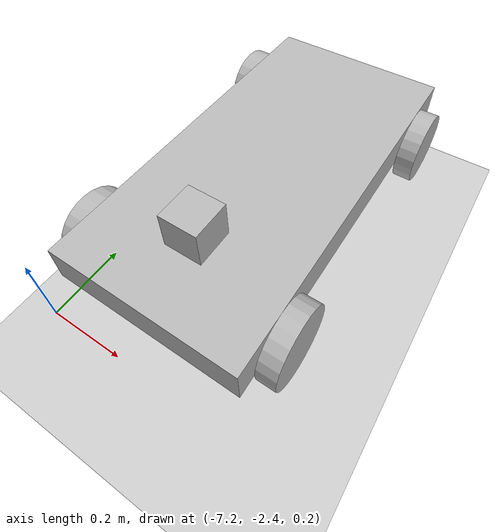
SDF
<sdf version="1.6">
 <world name="default">
  <light name="sun" type="directional">
   <pose>0 0 10 0 -0 0</pose>
   <diffuse>0.8 0.8 0.8 1</diffuse>
   <specular>0.2 0.2 0.2 1</specular>
   <attenuation>
    <range>1000</range>
    <constant>0.9</constant>
    <linear>0.01</linear>
    <quadratic>0.001</quadratic>
   </attenuation>
   <direction>-0.5 0.1 -0.9</direction>
  </light>
  <model name="ground_plane">
   <static>1</static>
   <link name="link">
    <collision name="collision">
     <geometry><plane><normal>0 0 1</normal><size>100 100</size></plane></geometry>
     <surface><friction><ode><mu>100</mu><mu2>50</mu2></ode></friction></surface>
    </collision>
    <visual name="visual">
     <cast_shadows>0</cast_shadows>
     <geometry><plane><normal>0 0 1</normal><size>100 100</size></plane></geometry>
     <material>
      <script><uri>file://media/materials/scripts/gazebo.material</uri><name>Gazebo/Grey</name></script>
     </material>
    </visual>
   </link>
  </model>
  <gravity>0 0 -9.8</gravity>
  <magnetic_field>6e-06 2.3e-05 -4.2e-05</magnetic_field>
  <atmosphere type="adiabatic"/>
  <physics name="default_physics" default="0" type="ode">
   <max_step_size>0.001</max_step_size>
   <real_time_factor>1</real_time_factor>
   <real_time_update_rate>1000</real_time_update_rate>
  </physics>
  <scene><ambient>0.4 0.4 0.4 1</ambient><background>0.7 0.7 0.7 1</background><shadows>1</shadows></scene>
  <audio><device>default</device></audio>
  <spherical_coordinates>
   <surface_model>EARTH_WGS84</surface_model>
   <latitude_deg>0</latitude_deg>
   <longitude_deg>0</longitude_deg>
   <elevation>0</elevation>
   <heading_deg>0</heading_deg>
  </spherical_coordinates>
  <model name="macroed">
   <link name="base_link">
    <inertial>
     <pose>0.014286 0 0.004762 0 -0 0</pose>
     <mass>5.25</mass>
     <inertia>
      <ixx>2.00238</ixx>
      <ixy>0</ixy>
      <ixz>-0.00714286</ixz>
      <iyy>2.02381</iyy>
      <iyz>0</iyz>
      <izz>2.02143</izz>
     </inertia>
    </inertial>
    <collision name="base_link_collision"><geometry><box><size>1 0.5 0.1</size></box></geometry></collision>
    <collision name="base_link_fixed_joint_lump__hokuyo_link_collision_1">
     <pose>0.3 0 0.1 0 -0 0</pose>
     <geometry><box><size>0.1 0.1 0.1</size></box></geometry>
    </collision>
    <visual name="base_link_visual">
     <geometry><box><size>1 0.5 0.1</size></box></geometry>
     <material><script><uri>__default__</uri><name>__default__</name></script></material>
    </visual>
    <visual name="base_link_fixed_joint_lump__hokuyo_link_visual_1">
     <pose>0.3 0 0.1 0 -0 0</pose>
     <geometry><box><size>0.1 0.1 0.1</size></box></geometry>
     <material><script><uri>__default__</uri><name>__default__</name></script></material>
    </visual>
    <sensor name="imu_sensor" type="imu">
     <always_on>1</always_on>
     <update_rate>100</update_rate>
     <visualize>1</visualize>
     <topic>__default_topic__</topic>
     <plugin name="imu_plugin" filename="libgazebo_ros_imu_sensor.so">
      <topicName>imu</topicName>
      <bodyName>base_link</bodyName>
      <updateRateHZ>10.0</updateRateHZ>
      <gaussianNoise>0.0</gaussianNoise>
      <xyzOffset>0 0 0</xyzOffset>
      <rpyOffset>0 0 0</rpyOffset>
      <frameName>base_link</frameName>
      <robotNamespace>/</robotNamespace>
     </plugin>
    </sensor>
    <sensor name="head_hokuyo_sensor" type="ray">
     <visualize>0</visualize>
     <update_rate>40</update_rate>
     <ray>
      <scan>
       <horizontal>
        <samples>720</samples>
        <resolution>1</resolution>
        <min_angle>-1.5708</min_angle>
        <max_angle>1.5708</max_angle>
       </horizontal>
       <vertical><samples>1</samples><min_angle>0</min_angle><max_angle>0</max_angle></vertical>
      </scan>
      <range><min>0.1</min><max>30</max><resolution>0.01</resolution></range>
      <noise><type>gaussian</type><mean>0</mean><stddev>0.01</stddev></noise>
     </ray>
     <plugin name="gazebo_ros_head_hokuyo_controller" filename="libgazebo_ros_laser.so">
      <topicName>/scan</topicName>
      <frameName>hokuyo_link</frameName>
      <robotNamespace>/</robotNamespace>
     </plugin>
     <pose>0.3 0 0.1 0 -0 0</pose>
    </sensor>
   </link>
   <link name="left_back_wheel">
    <pose>-0.35 0.275 -0.05 1.5708 -0 0</pose>
    <inertial>
     <mass>2</mass>
     <inertia><ixx>1</ixx><ixy>0</ixy><ixz>0</ixz><iyy>1</iyy><iyz>0</iyz><izz>1</izz></inertia>
    </inertial>
    <collision name="left_back_wheel_collision">
     <geometry><cylinder><length>0.05</length><radius>0.1</radius></cylinder></geometry>
    </collision>
    <visual name="left_back_wheel_visual">
     <geometry><cylinder><length>0.05</length><radius>0.1</radius></cylinder></geometry>
    </visual>
   </link>
   <joint name="left_back_wheel_joint" type="revolute">
    <child>left_back_wheel</child>
    <parent>base_link</parent>
    <axis>
     <xyz>0 -1 0</xyz>
     <limit><lower>-1e+16</lower><upper>1e+16</upper></limit>
     <dynamics><spring_reference>0</spring_reference><spring_stiffness>0</spring_stiffness></dynamics>
     <use_parent_model_frame>1</use_parent_model_frame>
    </axis>
   </joint>
   <link name="left_front_wheel">
    <pose>0.35 0.275 -0.05 1.5708 -0 0</pose>
    <inertial>
     <mass>2</mass>
     <inertia><ixx>1</ixx><ixy>0</ixy><ixz>0</ixz><iyy>1</iyy><iyz>0</iyz><izz>1</izz></inertia>
    </inertial>
    <collision name="left_front_wheel_collision">
     <geometry><cylinder><length>0.05</length><radius>0.1</radius></cylinder></geometry>
    </collision>
    <visual name="left_front_wheel_visual">
     <geometry><cylinder><length>0.05</length><radius>0.1</radius></cylinder></geometry>
    </visual>
   </link>
   <joint name="left_front_wheel_joint" type="revolute">
    <child>left_front_wheel</child>
    <parent>base_link</parent>
    <axis>
     <xyz>0 -1 0</xyz>
     <limit><lower>-1e+16</lower><upper>1e+16</upper></limit>
     <dynamics><spring_reference>0</spring_reference><spring_stiffness>0</spring_stiffness></dynamics>
     <use_parent_model_frame>1</use_parent_model_frame>
    </axis>
   </joint>
   <link name="right_back_wheel">
    <pose>-0.35 -0.275 -0.05 1.5708 -0 0</pose>
    <inertial>
     <mass>2</mass>
     <inertia><ixx>1</ixx><ixy>0</ixy><ixz>0</ixz><iyy>1</iyy><iyz>0</iyz><izz>1</izz></inertia>
    </inertial>
    <collision name="right_back_wheel_collision">
     <geometry><cylinder><length>0.05</length><radius>0.1</radius></cylinder></geometry>
    </collision>
    <visual name="right_back_wheel_visual">
     <geometry><cylinder><length>0.05</length><radius>0.1</radius></cylinder></geometry>
    </visual>
   </link>
   <joint name="right_back_wheel_joint" type="revolute">
    <child>right_back_wheel</child>
    <parent>base_link</parent>
    <axis>
     <xyz>0 -1 0</xyz>
     <limit><lower>-1e+16</lower><upper>1e+16</upper></limit>
     <dynamics><spring_reference>0</spring_reference><spring_stiffness>0</spring_stiffness></dynamics>
     <use_parent_model_frame>1</use_parent_model_frame>
    </axis>
   </joint>
   <link name="right_front_wheel">
    <pose>0.35 -0.275 -0.05 1.5708 -0 0</pose>
    <inertial>
     <mass>2</mass>
     <inertia><ixx>1</ixx><ixy>0</ixy><ixz>0</ixz><iyy>1</iyy><iyz>0</iyz><izz>1</izz></inertia>
    </inertial>
    <collision name="right_front_wheel_collision">
     <geometry><cylinder><length>0.05</length><radius>0.1</radius></cylinder></geometry>
    </collision>
    <visual name="right_front_wheel_visual">
     <geometry><cylinder><length>0.05</length><radius>0.1</radius></cylinder></geometry>
    </visual>
   </link>
   <joint name="right_front_wheel_joint" type="revolute">
    <child>right_front_wheel</child>
    <parent>base_link</parent>
    <axis>
     <xyz>0 -1 0</xyz>
     <limit><lower>-1e+16</lower><upper>1e+16</upper></limit>
     <dynamics><spring_reference>0</spring_reference><spring_stiffness>0</spring_stiffness></dynamics>
     <use_parent_model_frame>1</use_parent_model_frame>
    </axis>
   </joint>
   <plugin name="differential_drive_controller" filename="libgazebo_ros_diff_drive.so">
    <alwaysOn>1</alwaysOn>
    <updateRate>50.0</updateRate>
    <leftJoint>left_front_wheel_joint</leftJoint>
    <rightJoint>right_front_wheel_joint</rightJoint>
    <wheelSeparation>1.0</wheelSeparation>
    <wheelDiameter>0.5</wheelDiameter>
    <torque>1.0</torque>
    <commandTopic>cmd_vel</commandTopic>
    <odometryTopic>odom</odometryTopic>
    <odometryFrame>odom</odometryFrame>
    <robotBaseFrame>base_link</robotBaseFrame>
    <publishWheelTF>1</publishWheelTF>
    <publishWheelJointState>1</publishWheelJointState>
    <legecyMode>0</legecyMode>
    <wheelAcceleration>1</wheelAcceleration>
    <robotNamespace>/</robotNamespace>
   </plugin>
   <static>0</static>
   <plugin name="gazebo_ros_control" filename="libgazebo_ros_control.so">
    <robotNamespace>/robot</robotNamespace>
   </plugin>
   <pose>-6.94799 -1.84622 0.3398 0 -0 -1.5796</pose>
  </model>
 </world>
</sdf>
